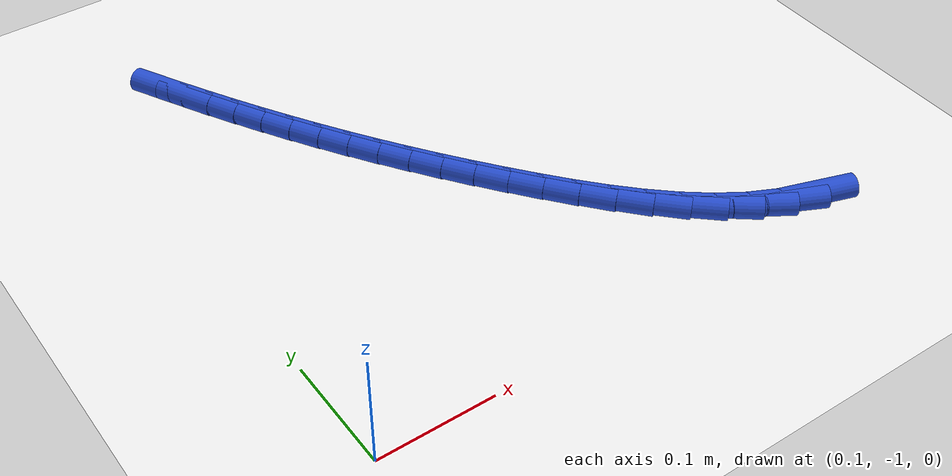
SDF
<sdf version="1.6">
 <world name="default">
  <model name="ground_plane">
   <static>1</static>
   <link name="link">
    <collision name="collision">
     <geometry><plane><normal>0 0 1</normal><size>100 100</size></plane></geometry>
     <surface><friction><ode><mu>100</mu><mu2>50</mu2></ode></friction></surface>
    </collision>
    <visual name="visual">
     <cast_shadows>0</cast_shadows>
     <geometry><plane><normal>0 0 1</normal><size>100 100</size></plane></geometry>
     <material>
      <script><uri>file://media/materials/scripts/gazebo.material</uri><name>Gazebo/WhiteGlow</name></script>
     </material>
    </visual>
   </link>
  </model>
  <model name="line">
   <link name="link_208">
    <pose>0.5213240032580045 -0.9805458631391661 0.01 0 1.57 -0.3152551310066443</pose>
    <collision name="collision">
     <geometry><cylinder><radius>0.01</radius><length>0.08</length></cylinder></geometry>
    </collision>
    <visual name="visual">
     <material>
      <script><name>Gazebo/Blue</name><uri>file://media/materials/scripts/gazebo.material</uri></script>
     </material>
     <geometry><cylinder><radius>0.01</radius><length>0.08</length></cylinder></geometry>
    </visual>
   </link>
   <link name="link_209">
    <pose>0.49685571197647793 -0.9725659780124931 0.01 0 1.57 -0.4548270249597062</pose>
    <collision name="collision">
     <geometry><cylinder><radius>0.01</radius><length>0.08</length></cylinder></geometry>
    </collision>
    <visual name="visual">
     <material>
      <script><name>Gazebo/Blue</name><uri>file://media/materials/scripts/gazebo.material</uri></script>
     </material>
     <geometry><cylinder><radius>0.01</radius><length>0.08</length></cylinder></geometry>
    </visual>
   </link>
   <link name="link_210">
    <pose>0.4732481573706228 -0.9610213550086885 0.01 0 1.57 -0.5709634408502967</pose>
    <collision name="collision">
     <geometry><cylinder><radius>0.01</radius><length>0.08</length></cylinder></geometry>
    </collision>
    <visual name="visual">
     <material>
      <script><name>Gazebo/Blue</name><uri>file://media/materials/scripts/gazebo.material</uri></script>
     </material>
     <geometry><cylinder><radius>0.01</radius><length>0.08</length></cylinder></geometry>
    </visual>
   </link>
   <link name="link_211">
    <pose>0.45048058514232775 -0.9463970909937431 0.01 0 1.57 -0.6652273742525675</pose>
    <collision name="collision">
     <geometry><cylinder><radius>0.01</radius><length>0.08</length></cylinder></geometry>
    </collision>
    <visual name="visual">
     <material>
      <script><name>Gazebo/Blue</name><uri>file://media/materials/scripts/gazebo.material</uri></script>
     </material>
     <geometry><cylinder><radius>0.01</radius><length>0.08</length></cylinder></geometry>
    </visual>
   </link>
   <link name="link_212">
    <pose>0.42853224099348064 -0.9291782828336491 0.01 0 1.57 -0.7404260541409362</pose>
    <collision name="collision">
     <geometry><cylinder><radius>0.01</radius><length>0.08</length></cylinder></geometry>
    </collision>
    <visual name="visual">
     <material>
      <script><name>Gazebo/Blue</name><uri>file://media/materials/scripts/gazebo.material</uri></script>
     </material>
     <geometry><cylinder><radius>0.01</radius><length>0.08</length></cylinder></geometry>
    </visual>
   </link>
   <link name="link_213">
    <pose>0.4073823706259692 -0.9098500273943968 0.01 0 1.57 -0.7994434196754937</pose>
    <collision name="collision">
     <geometry><cylinder><radius>0.01</radius><length>0.08</length></cylinder></geometry>
    </collision>
    <visual name="visual">
     <material>
      <script><name>Gazebo/Blue</name><uri>file://media/materials/scripts/gazebo.material</uri></script>
     </material>
     <geometry><cylinder><radius>0.01</radius><length>0.08</length></cylinder></geometry>
    </visual>
   </link>
   <link name="link_214">
    <pose>0.3870102197416817 -0.8888974215419787 0.01 0 1.57 -0.8447111326353608</pose>
    <collision name="collision">
     <geometry><cylinder><radius>0.01</radius><length>0.08</length></cylinder></geometry>
    </collision>
    <visual name="visual">
     <material>
      <script><name>Gazebo/Blue</name><uri>file://media/materials/scripts/gazebo.material</uri></script>
     </material>
     <geometry><cylinder><radius>0.01</radius><length>0.08</length></cylinder></geometry>
    </visual>
   </link>
   <link name="link_215">
    <pose>0.36739503404250584 -0.8668055621423856 0.01 0 1.57 -0.8780341801040932</pose>
    <collision name="collision">
     <geometry><cylinder><radius>0.01</radius><length>0.08</length></cylinder></geometry>
    </collision>
    <visual name="visual">
     <material>
      <script><name>Gazebo/Blue</name><uri>file://media/materials/scripts/gazebo.material</uri></script>
     </material>
     <geometry><cylinder><radius>0.01</radius><length>0.08</length></cylinder></geometry>
    </visual>
   </link>
   <link name="link_216">
    <pose>0.3485160592303296 -0.8440595460616089 0.01 0 1.57 -0.9007933438077684</pose>
    <collision name="collision">
     <geometry><cylinder><radius>0.01</radius><length>0.08</length></cylinder></geometry>
    </collision>
    <visual name="visual">
     <material>
      <script><name>Gazebo/Blue</name><uri>file://media/materials/scripts/gazebo.material</uri></script>
     </material>
     <geometry><cylinder><radius>0.01</radius><length>0.08</length></cylinder></geometry>
    </visual>
   </link>
   <link name="link_217">
    <pose>0.3303521498605744 -0.8211328154333146 0.01 0 1.57 -0.9184848064013807</pose>
    <collision name="collision">
     <geometry><cylinder><radius>0.01</radius><length>0.08</length></cylinder></geometry>
    </collision>
    <visual name="visual">
     <material>
      <script><name>Gazebo/Blue</name><uri>file://media/materials/scripts/gazebo.material</uri></script>
     </material>
     <geometry><cylinder><radius>0.01</radius><length>0.08</length></cylinder></geometry>
    </visual>
   </link>
   <link name="link_218">
    <pose>0.3128738507873843 -0.7982512137231845 0.01 0 1.57 -0.9359061525114302</pose>
    <collision name="collision">
     <geometry><cylinder><radius>0.01</radius><length>0.08</length></cylinder></geometry>
    </collision>
    <visual name="visual">
     <material>
      <script><name>Gazebo/Blue</name><uri>file://media/materials/scripts/gazebo.material</uri></script>
     </material>
     <geometry><cylinder><radius>0.01</radius><length>0.08</length></cylinder></geometry>
    </visual>
   </link>
   <link name="link_219">
    <pose>0.2960437616384632 -0.7754038457443388 0.01 0 1.57 -0.9531632074066824</pose>
    <collision name="collision">
     <geometry><cylinder><radius>0.01</radius><length>0.08</length></cylinder></geometry>
    </collision>
    <visual name="visual">
     <material>
      <script><name>Gazebo/Blue</name><uri>file://media/materials/scripts/gazebo.material</uri></script>
     </material>
     <geometry><cylinder><radius>0.01</radius><length>0.08</length></cylinder></geometry>
    </visual>
   </link>
   <link name="link_220">
    <pose>0.2798241638359887 -0.7525703349505017 0.01 0 1.57 -0.9701667262365792</pose>
    <collision name="collision">
     <geometry><cylinder><radius>0.01</radius><length>0.08</length></cylinder></geometry>
    </collision>
    <visual name="visual">
     <material>
      <script><name>Gazebo/Blue</name><uri>file://media/materials/scripts/gazebo.material</uri></script>
     </material>
     <geometry><cylinder><radius>0.01</radius><length>0.08</length></cylinder></geometry>
    </visual>
   </link>
   <link name="link_221">
    <pose>0.26417733880213895 -0.7297303047953979 0.01 0 1.57 -0.9868265102791571</pose>
    <collision name="collision">
     <geometry><cylinder><radius>0.01</radius><length>0.08</length></cylinder></geometry>
    </collision>
    <visual name="visual">
     <material>
      <script><name>Gazebo/Blue</name><uri>file://media/materials/scripts/gazebo.material</uri></script>
     </material>
     <geometry><cylinder><radius>0.01</radius><length>0.08</length></cylinder></geometry>
    </visual>
   </link>
   <link name="link_222">
    <pose>0.24906556795909196 -0.7068633787327514 0.01 0 1.57 -1.0030528847501368</pose>
    <collision name="collision">
     <geometry><cylinder><radius>0.01</radius><length>0.08</length></cylinder></geometry>
    </collision>
    <visual name="visual">
     <material>
      <script><name>Gazebo/Blue</name><uri>file://media/materials/scripts/gazebo.material</uri></script>
     </material>
     <geometry><cylinder><radius>0.01</radius><length>0.08</length></cylinder></geometry>
    </visual>
   </link>
   <link name="link_223">
    <pose>0.23445113272902554 -0.6839491802162866 0.01 0 1.57 -1.0187582000636677</pose>
    <collision name="collision">
     <geometry><cylinder><radius>0.01</radius><length>0.08</length></cylinder></geometry>
    </collision>
    <visual name="visual">
     <material>
      <script><name>Gazebo/Blue</name><uri>file://media/materials/scripts/gazebo.material</uri></script>
     </material>
     <geometry><cylinder><radius>0.01</radius><length>0.08</length></cylinder></geometry>
    </visual>
   </link>
   <link name="link_224">
    <pose>0.22029631453411774 -0.6609673326997281 0.01 0 1.57 -1.0338583009946638</pose>
    <collision name="collision">
     <geometry><cylinder><radius>0.01</radius><length>0.08</length></cylinder></geometry>
    </collision>
    <visual name="visual">
     <material>
      <script><name>Gazebo/Blue</name><uri>file://media/materials/scripts/gazebo.material</uri></script>
     </material>
     <geometry><cylinder><radius>0.01</radius><length>0.08</length></cylinder></geometry>
    </visual>
   </link>
   <link name="link_225">
    <pose>0.2065633947965465 -0.6378974596367998 0.01 0 1.57 -1.0482739100295848</pose>
    <collision name="collision">
     <geometry><cylinder><radius>0.01</radius><length>0.08</length></cylinder></geometry>
    </collision>
    <visual name="visual">
     <material>
      <script><name>Gazebo/Blue</name><uri>file://media/materials/scripts/gazebo.material</uri></script>
     </material>
     <geometry><cylinder><radius>0.01</radius><length>0.08</length></cylinder></geometry>
    </visual>
   </link>
   <link name="link_226">
    <pose>0.19321465493848985 -0.6147191844812264 0.01 0 1.57 -1.061931876637033</pose>
    <collision name="collision">
     <geometry><cylinder><radius>0.01</radius><length>0.08</length></cylinder></geometry>
    </collision>
    <visual name="visual">
     <material>
      <script><name>Gazebo/Blue</name><uri>file://media/materials/scripts/gazebo.material</uri></script>
     </material>
     <geometry><cylinder><radius>0.01</radius><length>0.08</length></cylinder></geometry>
    </visual>
   </link>
   <link name="link_227">
    <pose>0.18021237638212564 -0.5914121306867323 0.01 0 1.57 -1.0747662526380095</pose>
    <collision name="collision">
     <geometry><cylinder><radius>0.01</radius><length>0.08</length></cylinder></geometry>
    </collision>
    <visual name="visual">
     <material>
      <script><name>Gazebo/Blue</name><uri>file://media/materials/scripts/gazebo.material</uri></script>
     </material>
     <geometry><cylinder><radius>0.01</radius><length>0.08</length></cylinder></geometry>
    </visual>
   </link>
   <link name="link_228">
    <pose>0.16751884054963187 -0.5679559217070415 0.01 0 1.57 -1.0867191644126337</pose>
    <collision name="collision">
     <geometry><cylinder><radius>0.01</radius><length>0.08</length></cylinder></geometry>
    </collision>
    <visual name="visual">
     <material>
      <script><name>Gazebo/Blue</name><uri>file://media/materials/scripts/gazebo.material</uri></script>
     </material>
     <geometry><cylinder><radius>0.01</radius><length>0.08</length></cylinder></geometry>
    </visual>
   </link>
  </model>
 </world>
</sdf>
